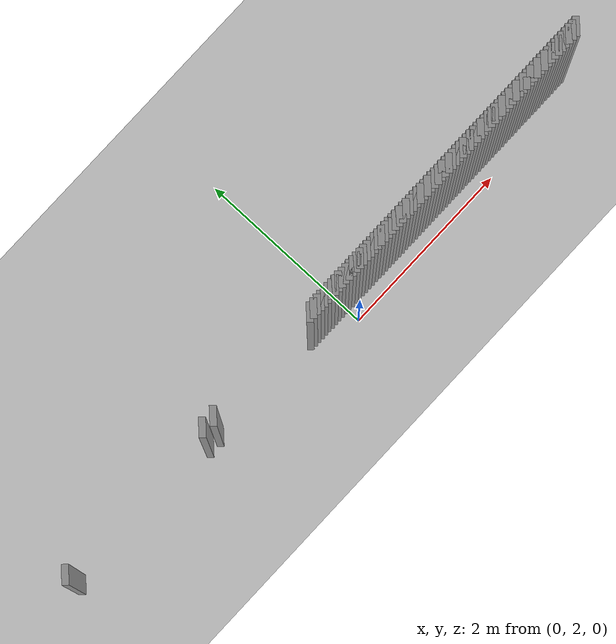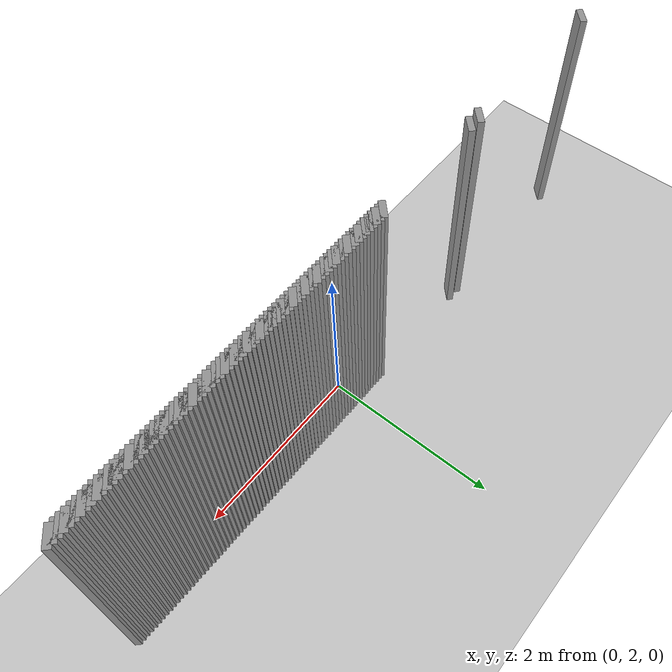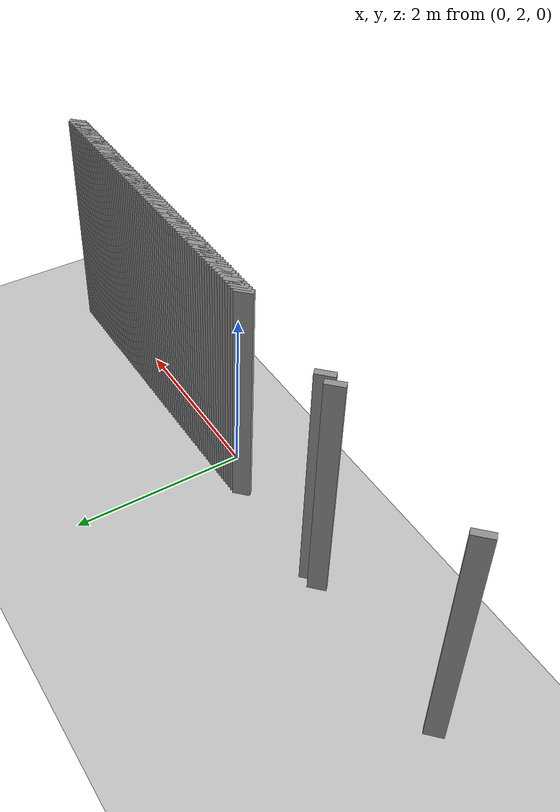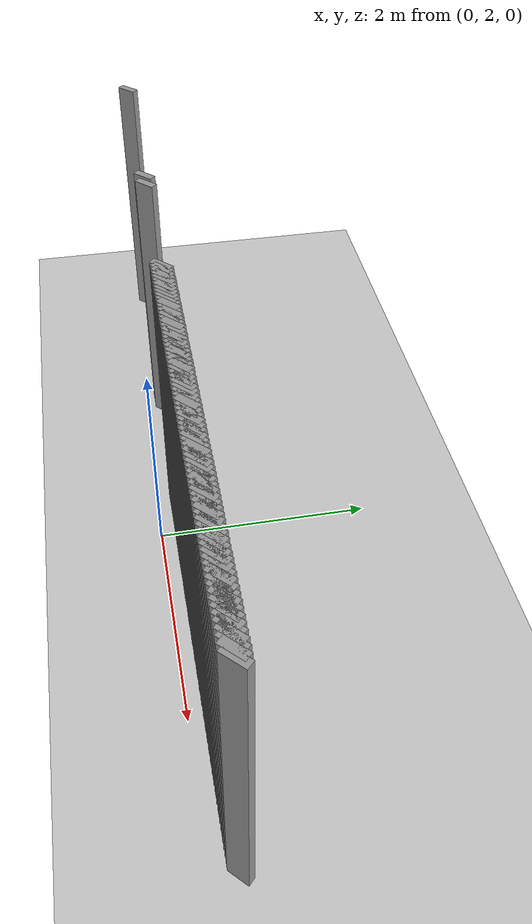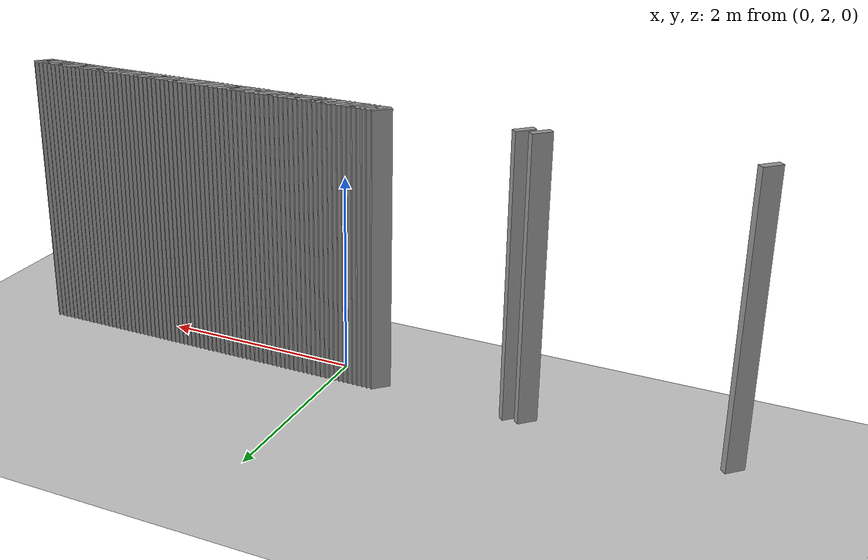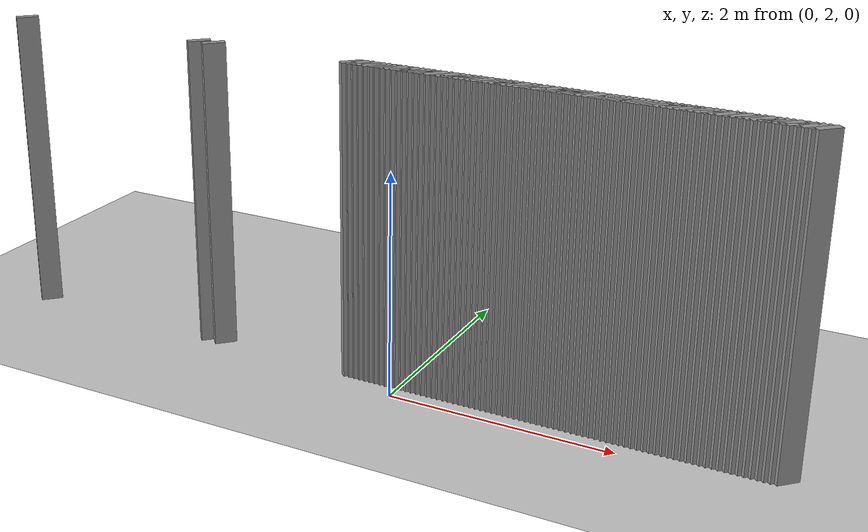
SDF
<sdf version="1.5">
 <world name="default">
  <include><uri>model://ground_plane</uri></include>
  <include><uri>model://sun</uri></include>
  <model name="grey_wall_551">
   <static>1</static>
   <link name="link">
    <pose>-3.875 2.225  1.4 0 0 -0.785398163397</pose>
    <collision name="collision"><geometry><box><size>0.0707106781187 .2  2.8</size></box></geometry></collision>
    <visual name="visual">
     <cast_shadows>0</cast_shadows>
     <geometry><box><size>0.0707106781187 .2  2.8</size></box></geometry>
     <material>
      <script>
       <uri>model://grey_wall/materials/scripts</uri>
       <uri>model://grey_wall/materials/textures</uri>
       <name>vrc/grey_wall</name>
      </script>
     </material>
    </visual>
   </link>
  </model>
  <model name="grey_wall_552">
   <static>1</static>
   <link name="link">
    <pose>-1.975 2.225  1.4 0 0 -0.785398163397</pose>
    <collision name="collision"><geometry><box><size>0.0707106781187 .2  2.8</size></box></geometry></collision>
    <visual name="visual">
     <cast_shadows>0</cast_shadows>
     <geometry><box><size>0.0707106781187 .2  2.8</size></box></geometry>
     <material>
      <script>
       <uri>model://grey_wall/materials/scripts</uri>
       <uri>model://grey_wall/materials/textures</uri>
       <name>vrc/grey_wall</name>
      </script>
     </material>
    </visual>
   </link>
  </model>
  <model name="grey_wall_553">
   <static>1</static>
   <link name="link">
    <pose>-1.825 2.225  1.4 0 0 -0.785398163397</pose>
    <collision name="collision"><geometry><box><size>0.0707106781187 .2  2.8</size></box></geometry></collision>
    <visual name="visual">
     <cast_shadows>0</cast_shadows>
     <geometry><box><size>0.0707106781187 .2  2.8</size></box></geometry>
     <material>
      <script>
       <uri>model://grey_wall/materials/scripts</uri>
       <uri>model://grey_wall/materials/textures</uri>
       <name>vrc/grey_wall</name>
      </script>
     </material>
    </visual>
   </link>
  </model>
  <model name="grey_wall_554">
   <static>1</static>
   <link name="link">
    <pose>-0.475 2.225  1.4 0 0 -0.785398163397</pose>
    <collision name="collision"><geometry><box><size>0.0707106781187 .2  2.8</size></box></geometry></collision>
    <visual name="visual">
     <cast_shadows>0</cast_shadows>
     <geometry><box><size>0.0707106781187 .2  2.8</size></box></geometry>
     <material>
      <script>
       <uri>model://grey_wall/materials/scripts</uri>
       <uri>model://grey_wall/materials/textures</uri>
       <name>vrc/grey_wall</name>
      </script>
     </material>
    </visual>
   </link>
  </model>
  <model name="grey_wall_555">
   <static>1</static>
   <link name="link">
    <pose>-0.425 2.225  1.4 0 0 -0.785398163397</pose>
    <collision name="collision"><geometry><box><size>0.0707106781187 .2  2.8</size></box></geometry></collision>
    <visual name="visual">
     <cast_shadows>0</cast_shadows>
     <geometry><box><size>0.0707106781187 .2  2.8</size></box></geometry>
     <material>
      <script>
       <uri>model://grey_wall/materials/scripts</uri>
       <uri>model://grey_wall/materials/textures</uri>
       <name>vrc/grey_wall</name>
      </script>
     </material>
    </visual>
   </link>
  </model>
  <model name="grey_wall_556">
   <static>1</static>
   <link name="link">
    <pose>-0.375 2.225  1.4 0 0 -0.785398163397</pose>
    <collision name="collision"><geometry><box><size>0.0707106781187 .2  2.8</size></box></geometry></collision>
    <visual name="visual">
     <cast_shadows>0</cast_shadows>
     <geometry><box><size>0.0707106781187 .2  2.8</size></box></geometry>
     <material>
      <script>
       <uri>model://grey_wall/materials/scripts</uri>
       <uri>model://grey_wall/materials/textures</uri>
       <name>vrc/grey_wall</name>
      </script>
     </material>
    </visual>
   </link>
  </model>
  <model name="grey_wall_557">
   <static>1</static>
   <link name="link">
    <pose>-0.325 2.225  1.4 0 0 -0.785398163397</pose>
    <collision name="collision"><geometry><box><size>0.0707106781187 .2  2.8</size></box></geometry></collision>
    <visual name="visual">
     <cast_shadows>0</cast_shadows>
     <geometry><box><size>0.0707106781187 .2  2.8</size></box></geometry>
     <material>
      <script>
       <uri>model://grey_wall/materials/scripts</uri>
       <uri>model://grey_wall/materials/textures</uri>
       <name>vrc/grey_wall</name>
      </script>
     </material>
    </visual>
   </link>
  </model>
  <model name="grey_wall_558">
   <static>1</static>
   <link name="link">
    <pose>-0.275 2.225  1.4 0 0 -0.785398163397</pose>
    <collision name="collision"><geometry><box><size>0.0707106781187 .2  2.8</size></box></geometry></collision>
    <visual name="visual">
     <cast_shadows>0</cast_shadows>
     <geometry><box><size>0.0707106781187 .2  2.8</size></box></geometry>
     <material>
      <script>
       <uri>model://grey_wall/materials/scripts</uri>
       <uri>model://grey_wall/materials/textures</uri>
       <name>vrc/grey_wall</name>
      </script>
     </material>
    </visual>
   </link>
  </model>
  <model name="grey_wall_559">
   <static>1</static>
   <link name="link">
    <pose>-0.225 2.225  1.4 0 0 -0.785398163397</pose>
    <collision name="collision"><geometry><box><size>0.0707106781187 .2  2.8</size></box></geometry></collision>
    <visual name="visual">
     <cast_shadows>0</cast_shadows>
     <geometry><box><size>0.0707106781187 .2  2.8</size></box></geometry>
     <material>
      <script>
       <uri>model://grey_wall/materials/scripts</uri>
       <uri>model://grey_wall/materials/textures</uri>
       <name>vrc/grey_wall</name>
      </script>
     </material>
    </visual>
   </link>
  </model>
  <model name="grey_wall_560">
   <static>1</static>
   <link name="link">
    <pose>-0.175 2.225  1.4 0 0 -0.785398163397</pose>
    <collision name="collision"><geometry><box><size>0.0707106781187 .2  2.8</size></box></geometry></collision>
    <visual name="visual">
     <cast_shadows>0</cast_shadows>
     <geometry><box><size>0.0707106781187 .2  2.8</size></box></geometry>
     <material>
      <script>
       <uri>model://grey_wall/materials/scripts</uri>
       <uri>model://grey_wall/materials/textures</uri>
       <name>vrc/grey_wall</name>
      </script>
     </material>
    </visual>
   </link>
  </model>
  <model name="grey_wall_561">
   <static>1</static>
   <link name="link">
    <pose>-0.125 2.225  1.4 0 0 -0.785398163397</pose>
    <collision name="collision"><geometry><box><size>0.0707106781187 .2  2.8</size></box></geometry></collision>
    <visual name="visual">
     <cast_shadows>0</cast_shadows>
     <geometry><box><size>0.0707106781187 .2  2.8</size></box></geometry>
     <material>
      <script>
       <uri>model://grey_wall/materials/scripts</uri>
       <uri>model://grey_wall/materials/textures</uri>
       <name>vrc/grey_wall</name>
      </script>
     </material>
    </visual>
   </link>
  </model>
  <model name="grey_wall_562">
   <static>1</static>
   <link name="link">
    <pose>-0.075 2.225  1.4 0 0 -0.785398163397</pose>
    <collision name="collision"><geometry><box><size>0.0707106781187 .2  2.8</size></box></geometry></collision>
    <visual name="visual">
     <cast_shadows>0</cast_shadows>
     <geometry><box><size>0.0707106781187 .2  2.8</size></box></geometry>
     <material>
      <script>
       <uri>model://grey_wall/materials/scripts</uri>
       <uri>model://grey_wall/materials/textures</uri>
       <name>vrc/grey_wall</name>
      </script>
     </material>
    </visual>
   </link>
  </model>
  <model name="grey_wall_563">
   <static>1</static>
   <link name="link">
    <pose>-0.025 2.225  1.4 0 0 -0.785398163397</pose>
    <collision name="collision"><geometry><box><size>0.0707106781187 .2  2.8</size></box></geometry></collision>
    <visual name="visual">
     <cast_shadows>0</cast_shadows>
     <geometry><box><size>0.0707106781187 .2  2.8</size></box></geometry>
     <material>
      <script>
       <uri>model://grey_wall/materials/scripts</uri>
       <uri>model://grey_wall/materials/textures</uri>
       <name>vrc/grey_wall</name>
      </script>
     </material>
    </visual>
   </link>
  </model>
  <model name="grey_wall_564">
   <static>1</static>
   <link name="link">
    <pose>0.025 2.225  1.4 0 0 -0.785398163397</pose>
    <collision name="collision"><geometry><box><size>0.0707106781187 .2  2.8</size></box></geometry></collision>
    <visual name="visual">
     <cast_shadows>0</cast_shadows>
     <geometry><box><size>0.0707106781187 .2  2.8</size></box></geometry>
     <material>
      <script>
       <uri>model://grey_wall/materials/scripts</uri>
       <uri>model://grey_wall/materials/textures</uri>
       <name>vrc/grey_wall</name>
      </script>
     </material>
    </visual>
   </link>
  </model>
  <model name="grey_wall_565">
   <static>1</static>
   <link name="link">
    <pose>0.075 2.225  1.4 0 0 -0.785398163397</pose>
    <collision name="collision"><geometry><box><size>0.0707106781187 .2  2.8</size></box></geometry></collision>
    <visual name="visual">
     <cast_shadows>0</cast_shadows>
     <geometry><box><size>0.0707106781187 .2  2.8</size></box></geometry>
     <material>
      <script>
       <uri>model://grey_wall/materials/scripts</uri>
       <uri>model://grey_wall/materials/textures</uri>
       <name>vrc/grey_wall</name>
      </script>
     </material>
    </visual>
   </link>
  </model>
  <model name="grey_wall_566">
   <static>1</static>
   <link name="link">
    <pose>0.125 2.225  1.4 0 0 -0.785398163397</pose>
    <collision name="collision"><geometry><box><size>0.0707106781187 .2  2.8</size></box></geometry></collision>
    <visual name="visual">
     <cast_shadows>0</cast_shadows>
     <geometry><box><size>0.0707106781187 .2  2.8</size></box></geometry>
     <material>
      <script>
       <uri>model://grey_wall/materials/scripts</uri>
       <uri>model://grey_wall/materials/textures</uri>
       <name>vrc/grey_wall</name>
      </script>
     </material>
    </visual>
   </link>
  </model>
  <model name="grey_wall_567">
   <static>1</static>
   <link name="link">
    <pose>0.175 2.225  1.4 0 0 -0.785398163397</pose>
    <collision name="collision"><geometry><box><size>0.0707106781187 .2  2.8</size></box></geometry></collision>
    <visual name="visual">
     <cast_shadows>0</cast_shadows>
     <geometry><box><size>0.0707106781187 .2  2.8</size></box></geometry>
     <material>
      <script>
       <uri>model://grey_wall/materials/scripts</uri>
       <uri>model://grey_wall/materials/textures</uri>
       <name>vrc/grey_wall</name>
      </script>
     </material>
    </visual>
   </link>
  </model>
  <model name="grey_wall_568">
   <static>1</static>
   <link name="link">
    <pose>0.225 2.225  1.4 0 0 -0.785398163397</pose>
    <collision name="collision"><geometry><box><size>0.0707106781187 .2  2.8</size></box></geometry></collision>
    <visual name="visual">
     <cast_shadows>0</cast_shadows>
     <geometry><box><size>0.0707106781187 .2  2.8</size></box></geometry>
     <material>
      <script>
       <uri>model://grey_wall/materials/scripts</uri>
       <uri>model://grey_wall/materials/textures</uri>
       <name>vrc/grey_wall</name>
      </script>
     </material>
    </visual>
   </link>
  </model>
  <model name="grey_wall_569">
   <static>1</static>
   <link name="link">
    <pose>0.275 2.225  1.4 0 0 -0.785398163397</pose>
    <collision name="collision"><geometry><box><size>0.0707106781187 .2  2.8</size></box></geometry></collision>
    <visual name="visual">
     <cast_shadows>0</cast_shadows>
     <geometry><box><size>0.0707106781187 .2  2.8</size></box></geometry>
     <material>
      <script>
       <uri>model://grey_wall/materials/scripts</uri>
       <uri>model://grey_wall/materials/textures</uri>
       <name>vrc/grey_wall</name>
      </script>
     </material>
    </visual>
   </link>
  </model>
  <model name="grey_wall_570">
   <static>1</static>
   <link name="link">
    <pose>0.325 2.225  1.4 0 0 -0.785398163397</pose>
    <collision name="collision"><geometry><box><size>0.0707106781187 .2  2.8</size></box></geometry></collision>
    <visual name="visual">
     <cast_shadows>0</cast_shadows>
     <geometry><box><size>0.0707106781187 .2  2.8</size></box></geometry>
     <material>
      <script>
       <uri>model://grey_wall/materials/scripts</uri>
       <uri>model://grey_wall/materials/textures</uri>
       <name>vrc/grey_wall</name>
      </script>
     </material>
    </visual>
   </link>
  </model>
  <model name="grey_wall_571">
   <static>1</static>
   <link name="link">
    <pose>0.375 2.225  1.4 0 0 -0.785398163397</pose>
    <collision name="collision"><geometry><box><size>0.0707106781187 .2  2.8</size></box></geometry></collision>
    <visual name="visual">
     <cast_shadows>0</cast_shadows>
     <geometry><box><size>0.0707106781187 .2  2.8</size></box></geometry>
     <material>
      <script>
       <uri>model://grey_wall/materials/scripts</uri>
       <uri>model://grey_wall/materials/textures</uri>
       <name>vrc/grey_wall</name>
      </script>
     </material>
    </visual>
   </link>
  </model>
  <model name="grey_wall_572">
   <static>1</static>
   <link name="link">
    <pose>0.425 2.225  1.4 0 0 -0.785398163397</pose>
    <collision name="collision"><geometry><box><size>0.0707106781187 .2  2.8</size></box></geometry></collision>
    <visual name="visual">
     <cast_shadows>0</cast_shadows>
     <geometry><box><size>0.0707106781187 .2  2.8</size></box></geometry>
     <material>
      <script>
       <uri>model://grey_wall/materials/scripts</uri>
       <uri>model://grey_wall/materials/textures</uri>
       <name>vrc/grey_wall</name>
      </script>
     </material>
    </visual>
   </link>
  </model>
  <model name="grey_wall_573">
   <static>1</static>
   <link name="link">
    <pose>0.475 2.225  1.4 0 0 -0.785398163397</pose>
    <collision name="collision"><geometry><box><size>0.0707106781187 .2  2.8</size></box></geometry></collision>
    <visual name="visual">
     <cast_shadows>0</cast_shadows>
     <geometry><box><size>0.0707106781187 .2  2.8</size></box></geometry>
     <material>
      <script>
       <uri>model://grey_wall/materials/scripts</uri>
       <uri>model://grey_wall/materials/textures</uri>
       <name>vrc/grey_wall</name>
      </script>
     </material>
    </visual>
   </link>
  </model>
  <model name="grey_wall_574">
   <static>1</static>
   <link name="link">
    <pose>0.525 2.225  1.4 0 0 -0.785398163397</pose>
    <collision name="collision"><geometry><box><size>0.0707106781187 .2  2.8</size></box></geometry></collision>
    <visual name="visual">
     <cast_shadows>0</cast_shadows>
     <geometry><box><size>0.0707106781187 .2  2.8</size></box></geometry>
     <material>
      <script>
       <uri>model://grey_wall/materials/scripts</uri>
       <uri>model://grey_wall/materials/textures</uri>
       <name>vrc/grey_wall</name>
      </script>
     </material>
    </visual>
   </link>
  </model>
  <model name="grey_wall_575">
   <static>1</static>
   <link name="link">
    <pose>0.575 2.225  1.4 0 0 -0.785398163397</pose>
    <collision name="collision"><geometry><box><size>0.0707106781187 .2  2.8</size></box></geometry></collision>
    <visual name="visual">
     <cast_shadows>0</cast_shadows>
     <geometry><box><size>0.0707106781187 .2  2.8</size></box></geometry>
     <material>
      <script>
       <uri>model://grey_wall/materials/scripts</uri>
       <uri>model://grey_wall/materials/textures</uri>
       <name>vrc/grey_wall</name>
      </script>
     </material>
    </visual>
   </link>
  </model>
  <model name="grey_wall_576">
   <static>1</static>
   <link name="link">
    <pose>0.625 2.225  1.4 0 0 -0.785398163397</pose>
    <collision name="collision"><geometry><box><size>0.0707106781187 .2  2.8</size></box></geometry></collision>
    <visual name="visual">
     <cast_shadows>0</cast_shadows>
     <geometry><box><size>0.0707106781187 .2  2.8</size></box></geometry>
     <material>
      <script>
       <uri>model://grey_wall/materials/scripts</uri>
       <uri>model://grey_wall/materials/textures</uri>
       <name>vrc/grey_wall</name>
      </script>
     </material>
    </visual>
   </link>
  </model>
  <model name="grey_wall_577">
   <static>1</static>
   <link name="link">
    <pose>0.675 2.225  1.4 0 0 -0.785398163397</pose>
    <collision name="collision"><geometry><box><size>0.0707106781187 .2  2.8</size></box></geometry></collision>
    <visual name="visual">
     <cast_shadows>0</cast_shadows>
     <geometry><box><size>0.0707106781187 .2  2.8</size></box></geometry>
     <material>
      <script>
       <uri>model://grey_wall/materials/scripts</uri>
       <uri>model://grey_wall/materials/textures</uri>
       <name>vrc/grey_wall</name>
      </script>
     </material>
    </visual>
   </link>
  </model>
  <model name="grey_wall_578">
   <static>1</static>
   <link name="link">
    <pose>0.725 2.225  1.4 0 0 -0.785398163397</pose>
    <collision name="collision"><geometry><box><size>0.0707106781187 .2  2.8</size></box></geometry></collision>
    <visual name="visual">
     <cast_shadows>0</cast_shadows>
     <geometry><box><size>0.0707106781187 .2  2.8</size></box></geometry>
     <material>
      <script>
       <uri>model://grey_wall/materials/scripts</uri>
       <uri>model://grey_wall/materials/textures</uri>
       <name>vrc/grey_wall</name>
      </script>
     </material>
    </visual>
   </link>
  </model>
  <model name="grey_wall_579">
   <static>1</static>
   <link name="link">
    <pose>0.775 2.225  1.4 0 0 -0.785398163397</pose>
    <collision name="collision"><geometry><box><size>0.0707106781187 .2  2.8</size></box></geometry></collision>
    <visual name="visual">
     <cast_shadows>0</cast_shadows>
     <geometry><box><size>0.0707106781187 .2  2.8</size></box></geometry>
     <material>
      <script>
       <uri>model://grey_wall/materials/scripts</uri>
       <uri>model://grey_wall/materials/textures</uri>
       <name>vrc/grey_wall</name>
      </script>
     </material>
    </visual>
   </link>
  </model>
  <model name="grey_wall_580">
   <static>1</static>
   <link name="link">
    <pose>0.825 2.225  1.4 0 0 -0.785398163397</pose>
    <collision name="collision"><geometry><box><size>0.0707106781187 .2  2.8</size></box></geometry></collision>
    <visual name="visual">
     <cast_shadows>0</cast_shadows>
     <geometry><box><size>0.0707106781187 .2  2.8</size></box></geometry>
     <material>
      <script>
       <uri>model://grey_wall/materials/scripts</uri>
       <uri>model://grey_wall/materials/textures</uri>
       <name>vrc/grey_wall</name>
      </script>
     </material>
    </visual>
   </link>
  </model>
  <model name="grey_wall_581">
   <static>1</static>
   <link name="link">
    <pose>0.875 2.225  1.4 0 0 -0.785398163397</pose>
    <collision name="collision"><geometry><box><size>0.0707106781187 .2  2.8</size></box></geometry></collision>
    <visual name="visual">
     <cast_shadows>0</cast_shadows>
     <geometry><box><size>0.0707106781187 .2  2.8</size></box></geometry>
     <material>
      <script>
       <uri>model://grey_wall/materials/scripts</uri>
       <uri>model://grey_wall/materials/textures</uri>
       <name>vrc/grey_wall</name>
      </script>
     </material>
    </visual>
   </link>
  </model>
  <model name="grey_wall_582">
   <static>1</static>
   <link name="link">
    <pose>0.925 2.225  1.4 0 0 -0.785398163397</pose>
    <collision name="collision"><geometry><box><size>0.0707106781187 .2  2.8</size></box></geometry></collision>
    <visual name="visual">
     <cast_shadows>0</cast_shadows>
     <geometry><box><size>0.0707106781187 .2  2.8</size></box></geometry>
     <material>
      <script>
       <uri>model://grey_wall/materials/scripts</uri>
       <uri>model://grey_wall/materials/textures</uri>
       <name>vrc/grey_wall</name>
      </script>
     </material>
    </visual>
   </link>
  </model>
  <model name="grey_wall_583">
   <static>1</static>
   <link name="link">
    <pose>0.975 2.225  1.4 0 0 -0.785398163397</pose>
    <collision name="collision"><geometry><box><size>0.0707106781187 .2  2.8</size></box></geometry></collision>
    <visual name="visual">
     <cast_shadows>0</cast_shadows>
     <geometry><box><size>0.0707106781187 .2  2.8</size></box></geometry>
     <material>
      <script>
       <uri>model://grey_wall/materials/scripts</uri>
       <uri>model://grey_wall/materials/textures</uri>
       <name>vrc/grey_wall</name>
      </script>
     </material>
    </visual>
   </link>
  </model>
  <model name="grey_wall_584">
   <static>1</static>
   <link name="link">
    <pose>1.025 2.225  1.4 0 0 -0.785398163397</pose>
    <collision name="collision"><geometry><box><size>0.0707106781187 .2  2.8</size></box></geometry></collision>
    <visual name="visual">
     <cast_shadows>0</cast_shadows>
     <geometry><box><size>0.0707106781187 .2  2.8</size></box></geometry>
     <material>
      <script>
       <uri>model://grey_wall/materials/scripts</uri>
       <uri>model://grey_wall/materials/textures</uri>
       <name>vrc/grey_wall</name>
      </script>
     </material>
    </visual>
   </link>
  </model>
  <model name="grey_wall_585">
   <static>1</static>
   <link name="link">
    <pose>1.075 2.225  1.4 0 0 -0.785398163397</pose>
    <collision name="collision"><geometry><box><size>0.0707106781187 .2  2.8</size></box></geometry></collision>
    <visual name="visual">
     <cast_shadows>0</cast_shadows>
     <geometry><box><size>0.0707106781187 .2  2.8</size></box></geometry>
     <material>
      <script>
       <uri>model://grey_wall/materials/scripts</uri>
       <uri>model://grey_wall/materials/textures</uri>
       <name>vrc/grey_wall</name>
      </script>
     </material>
    </visual>
   </link>
  </model>
  <model name="grey_wall_586">
   <static>1</static>
   <link name="link">
    <pose>1.125 2.225  1.4 0 0 -0.785398163397</pose>
    <collision name="collision"><geometry><box><size>0.0707106781187 .2  2.8</size></box></geometry></collision>
    <visual name="visual">
     <cast_shadows>0</cast_shadows>
     <geometry><box><size>0.0707106781187 .2  2.8</size></box></geometry>
     <material>
      <script>
       <uri>model://grey_wall/materials/scripts</uri>
       <uri>model://grey_wall/materials/textures</uri>
       <name>vrc/grey_wall</name>
      </script>
     </material>
    </visual>
   </link>
  </model>
  <model name="grey_wall_587">
   <static>1</static>
   <link name="link">
    <pose>1.175 2.225  1.4 0 0 -0.785398163397</pose>
    <collision name="collision"><geometry><box><size>0.0707106781187 .2  2.8</size></box></geometry></collision>
    <visual name="visual">
     <cast_shadows>0</cast_shadows>
     <geometry><box><size>0.0707106781187 .2  2.8</size></box></geometry>
     <material>
      <script>
       <uri>model://grey_wall/materials/scripts</uri>
       <uri>model://grey_wall/materials/textures</uri>
       <name>vrc/grey_wall</name>
      </script>
     </material>
    </visual>
   </link>
  </model>
  <model name="grey_wall_588">
   <static>1</static>
   <link name="link">
    <pose>1.225 2.225  1.4 0 0 -0.785398163397</pose>
    <collision name="collision"><geometry><box><size>0.0707106781187 .2  2.8</size></box></geometry></collision>
    <visual name="visual">
     <cast_shadows>0</cast_shadows>
     <geometry><box><size>0.0707106781187 .2  2.8</size></box></geometry>
     <material>
      <script>
       <uri>model://grey_wall/materials/scripts</uri>
       <uri>model://grey_wall/materials/textures</uri>
       <name>vrc/grey_wall</name>
      </script>
     </material>
    </visual>
   </link>
  </model>
  <model name="grey_wall_589">
   <static>1</static>
   <link name="link">
    <pose>1.275 2.225  1.4 0 0 -0.785398163397</pose>
    <collision name="collision"><geometry><box><size>0.0707106781187 .2  2.8</size></box></geometry></collision>
    <visual name="visual">
     <cast_shadows>0</cast_shadows>
     <geometry><box><size>0.0707106781187 .2  2.8</size></box></geometry>
     <material>
      <script>
       <uri>model://grey_wall/materials/scripts</uri>
       <uri>model://grey_wall/materials/textures</uri>
       <name>vrc/grey_wall</name>
      </script>
     </material>
    </visual>
   </link>
  </model>
  <model name="grey_wall_590">
   <static>1</static>
   <link name="link">
    <pose>1.325 2.225  1.4 0 0 -0.785398163397</pose>
    <collision name="collision"><geometry><box><size>0.0707106781187 .2  2.8</size></box></geometry></collision>
    <visual name="visual">
     <cast_shadows>0</cast_shadows>
     <geometry><box><size>0.0707106781187 .2  2.8</size></box></geometry>
     <material>
      <script>
       <uri>model://grey_wall/materials/scripts</uri>
       <uri>model://grey_wall/materials/textures</uri>
       <name>vrc/grey_wall</name>
      </script>
     </material>
    </visual>
   </link>
  </model>
  <model name="grey_wall_591">
   <static>1</static>
   <link name="link">
    <pose>1.375 2.225  1.4 0 0 -0.785398163397</pose>
    <collision name="collision"><geometry><box><size>0.0707106781187 .2  2.8</size></box></geometry></collision>
    <visual name="visual">
     <cast_shadows>0</cast_shadows>
     <geometry><box><size>0.0707106781187 .2  2.8</size></box></geometry>
     <material>
      <script>
       <uri>model://grey_wall/materials/scripts</uri>
       <uri>model://grey_wall/materials/textures</uri>
       <name>vrc/grey_wall</name>
      </script>
     </material>
    </visual>
   </link>
  </model>
  <model name="grey_wall_592">
   <static>1</static>
   <link name="link">
    <pose>1.425 2.225  1.4 0 0 -0.785398163397</pose>
    <collision name="collision"><geometry><box><size>0.0707106781187 .2  2.8</size></box></geometry></collision>
    <visual name="visual">
     <cast_shadows>0</cast_shadows>
     <geometry><box><size>0.0707106781187 .2  2.8</size></box></geometry>
     <material>
      <script>
       <uri>model://grey_wall/materials/scripts</uri>
       <uri>model://grey_wall/materials/textures</uri>
       <name>vrc/grey_wall</name>
      </script>
     </material>
    </visual>
   </link>
  </model>
  <model name="grey_wall_593">
   <static>1</static>
   <link name="link">
    <pose>1.475 2.225  1.4 0 0 -0.785398163397</pose>
    <collision name="collision"><geometry><box><size>0.0707106781187 .2  2.8</size></box></geometry></collision>
    <visual name="visual">
     <cast_shadows>0</cast_shadows>
     <geometry><box><size>0.0707106781187 .2  2.8</size></box></geometry>
     <material>
      <script>
       <uri>model://grey_wall/materials/scripts</uri>
       <uri>model://grey_wall/materials/textures</uri>
       <name>vrc/grey_wall</name>
      </script>
     </material>
    </visual>
   </link>
  </model>
  <model name="grey_wall_594">
   <static>1</static>
   <link name="link">
    <pose>1.525 2.225  1.4 0 0 -0.785398163397</pose>
    <collision name="collision"><geometry><box><size>0.0707106781187 .2  2.8</size></box></geometry></collision>
    <visual name="visual">
     <cast_shadows>0</cast_shadows>
     <geometry><box><size>0.0707106781187 .2  2.8</size></box></geometry>
     <material>
      <script>
       <uri>model://grey_wall/materials/scripts</uri>
       <uri>model://grey_wall/materials/textures</uri>
       <name>vrc/grey_wall</name>
      </script>
     </material>
    </visual>
   </link>
  </model>
  <model name="grey_wall_595">
   <static>1</static>
   <link name="link">
    <pose>1.575 2.225  1.4 0 0 -0.785398163397</pose>
    <collision name="collision"><geometry><box><size>0.0707106781187 .2  2.8</size></box></geometry></collision>
    <visual name="visual">
     <cast_shadows>0</cast_shadows>
     <geometry><box><size>0.0707106781187 .2  2.8</size></box></geometry>
     <material>
      <script>
       <uri>model://grey_wall/materials/scripts</uri>
       <uri>model://grey_wall/materials/textures</uri>
       <name>vrc/grey_wall</name>
      </script>
     </material>
    </visual>
   </link>
  </model>
  <model name="grey_wall_596">
   <static>1</static>
   <link name="link">
    <pose>1.625 2.225  1.4 0 0 -0.785398163397</pose>
    <collision name="collision"><geometry><box><size>0.0707106781187 .2  2.8</size></box></geometry></collision>
    <visual name="visual">
     <cast_shadows>0</cast_shadows>
     <geometry><box><size>0.0707106781187 .2  2.8</size></box></geometry>
     <material>
      <script>
       <uri>model://grey_wall/materials/scripts</uri>
       <uri>model://grey_wall/materials/textures</uri>
       <name>vrc/grey_wall</name>
      </script>
     </material>
    </visual>
   </link>
  </model>
  <model name="grey_wall_597">
   <static>1</static>
   <link name="link">
    <pose>1.675 2.225  1.4 0 0 -0.785398163397</pose>
    <collision name="collision"><geometry><box><size>0.0707106781187 .2  2.8</size></box></geometry></collision>
    <visual name="visual">
     <cast_shadows>0</cast_shadows>
     <geometry><box><size>0.0707106781187 .2  2.8</size></box></geometry>
     <material>
      <script>
       <uri>model://grey_wall/materials/scripts</uri>
       <uri>model://grey_wall/materials/textures</uri>
       <name>vrc/grey_wall</name>
      </script>
     </material>
    </visual>
   </link>
  </model>
  <model name="grey_wall_598">
   <static>1</static>
   <link name="link">
    <pose>1.725 2.225  1.4 0 0 -0.785398163397</pose>
    <collision name="collision"><geometry><box><size>0.0707106781187 .2  2.8</size></box></geometry></collision>
    <visual name="visual">
     <cast_shadows>0</cast_shadows>
     <geometry><box><size>0.0707106781187 .2  2.8</size></box></geometry>
     <material>
      <script>
       <uri>model://grey_wall/materials/scripts</uri>
       <uri>model://grey_wall/materials/textures</uri>
       <name>vrc/grey_wall</name>
      </script>
     </material>
    </visual>
   </link>
  </model>
  <model name="grey_wall_599">
   <static>1</static>
   <link name="link">
    <pose>1.775 2.225  1.4 0 0 -0.785398163397</pose>
    <collision name="collision"><geometry><box><size>0.0707106781187 .2  2.8</size></box></geometry></collision>
    <visual name="visual">
     <cast_shadows>0</cast_shadows>
     <geometry><box><size>0.0707106781187 .2  2.8</size></box></geometry>
     <material>
      <script>
       <uri>model://grey_wall/materials/scripts</uri>
       <uri>model://grey_wall/materials/textures</uri>
       <name>vrc/grey_wall</name>
      </script>
     </material>
    </visual>
   </link>
  </model>
  <model name="grey_wall_600">
   <static>1</static>
   <link name="link">
    <pose>1.825 2.225  1.4 0 0 -0.785398163397</pose>
    <collision name="collision"><geometry><box><size>0.0707106781187 .2  2.8</size></box></geometry></collision>
    <visual name="visual">
     <cast_shadows>0</cast_shadows>
     <geometry><box><size>0.0707106781187 .2  2.8</size></box></geometry>
     <material>
      <script>
       <uri>model://grey_wall/materials/scripts</uri>
       <uri>model://grey_wall/materials/textures</uri>
       <name>vrc/grey_wall</name>
      </script>
     </material>
    </visual>
   </link>
  </model>
  <model name="grey_wall_601">
   <static>1</static>
   <link name="link">
    <pose>1.875 2.225  1.4 0 0 -0.785398163397</pose>
    <collision name="collision"><geometry><box><size>0.0707106781187 .2  2.8</size></box></geometry></collision>
    <visual name="visual">
     <cast_shadows>0</cast_shadows>
     <geometry><box><size>0.0707106781187 .2  2.8</size></box></geometry>
     <material>
      <script>
       <uri>model://grey_wall/materials/scripts</uri>
       <uri>model://grey_wall/materials/textures</uri>
       <name>vrc/grey_wall</name>
      </script>
     </material>
    </visual>
   </link>
  </model>
  <model name="grey_wall_602">
   <static>1</static>
   <link name="link">
    <pose>1.925 2.225  1.4 0 0 -0.785398163397</pose>
    <collision name="collision"><geometry><box><size>0.0707106781187 .2  2.8</size></box></geometry></collision>
    <visual name="visual">
     <cast_shadows>0</cast_shadows>
     <geometry><box><size>0.0707106781187 .2  2.8</size></box></geometry>
     <material>
      <script>
       <uri>model://grey_wall/materials/scripts</uri>
       <uri>model://grey_wall/materials/textures</uri>
       <name>vrc/grey_wall</name>
      </script>
     </material>
    </visual>
   </link>
  </model>
  <model name="grey_wall_603">
   <static>1</static>
   <link name="link">
    <pose>1.975 2.225  1.4 0 0 -0.785398163397</pose>
    <collision name="collision"><geometry><box><size>0.0707106781187 .2  2.8</size></box></geometry></collision>
    <visual name="visual">
     <cast_shadows>0</cast_shadows>
     <geometry><box><size>0.0707106781187 .2  2.8</size></box></geometry>
     <material>
      <script>
       <uri>model://grey_wall/materials/scripts</uri>
       <uri>model://grey_wall/materials/textures</uri>
       <name>vrc/grey_wall</name>
      </script>
     </material>
    </visual>
   </link>
  </model>
  <model name="grey_wall_604">
   <static>1</static>
   <link name="link">
    <pose>2.025 2.225  1.4 0 0 -0.785398163397</pose>
    <collision name="collision"><geometry><box><size>0.0707106781187 .2  2.8</size></box></geometry></collision>
    <visual name="visual">
     <cast_shadows>0</cast_shadows>
     <geometry><box><size>0.0707106781187 .2  2.8</size></box></geometry>
     <material>
      <script>
       <uri>model://grey_wall/materials/scripts</uri>
       <uri>model://grey_wall/materials/textures</uri>
       <name>vrc/grey_wall</name>
      </script>
     </material>
    </visual>
   </link>
  </model>
  <model name="grey_wall_605">
   <static>1</static>
   <link name="link">
    <pose>2.075 2.225  1.4 0 0 -0.785398163397</pose>
    <collision name="collision"><geometry><box><size>0.0707106781187 .2  2.8</size></box></geometry></collision>
    <visual name="visual">
     <cast_shadows>0</cast_shadows>
     <geometry><box><size>0.0707106781187 .2  2.8</size></box></geometry>
     <material>
      <script>
       <uri>model://grey_wall/materials/scripts</uri>
       <uri>model://grey_wall/materials/textures</uri>
       <name>vrc/grey_wall</name>
      </script>
     </material>
    </visual>
   </link>
  </model>
  <model name="grey_wall_606">
   <static>1</static>
   <link name="link">
    <pose>2.125 2.225  1.4 0 0 -0.785398163397</pose>
    <collision name="collision"><geometry><box><size>0.0707106781187 .2  2.8</size></box></geometry></collision>
    <visual name="visual">
     <cast_shadows>0</cast_shadows>
     <geometry><box><size>0.0707106781187 .2  2.8</size></box></geometry>
     <material>
      <script>
       <uri>model://grey_wall/materials/scripts</uri>
       <uri>model://grey_wall/materials/textures</uri>
       <name>vrc/grey_wall</name>
      </script>
     </material>
    </visual>
   </link>
  </model>
  <model name="grey_wall_607">
   <static>1</static>
   <link name="link">
    <pose>2.175 2.225  1.4 0 0 -0.785398163397</pose>
    <collision name="collision"><geometry><box><size>0.0707106781187 .2  2.8</size></box></geometry></collision>
    <visual name="visual">
     <cast_shadows>0</cast_shadows>
     <geometry><box><size>0.0707106781187 .2  2.8</size></box></geometry>
     <material>
      <script>
       <uri>model://grey_wall/materials/scripts</uri>
       <uri>model://grey_wall/materials/textures</uri>
       <name>vrc/grey_wall</name>
      </script>
     </material>
    </visual>
   </link>
  </model>
  <model name="grey_wall_608">
   <static>1</static>
   <link name="link">
    <pose>2.225 2.225  1.4 0 0 -0.785398163397</pose>
    <collision name="collision"><geometry><box><size>0.0707106781187 .2  2.8</size></box></geometry></collision>
    <visual name="visual">
     <cast_shadows>0</cast_shadows>
     <geometry><box><size>0.0707106781187 .2  2.8</size></box></geometry>
     <material>
      <script>
       <uri>model://grey_wall/materials/scripts</uri>
       <uri>model://grey_wall/materials/textures</uri>
       <name>vrc/grey_wall</name>
      </script>
     </material>
    </visual>
   </link>
  </model>
  <model name="grey_wall_609">
   <static>1</static>
   <link name="link">
    <pose>2.275 2.225  1.4 0 0 -0.785398163397</pose>
    <collision name="collision"><geometry><box><size>0.0707106781187 .2  2.8</size></box></geometry></collision>
    <visual name="visual">
     <cast_shadows>0</cast_shadows>
     <geometry><box><size>0.0707106781187 .2  2.8</size></box></geometry>
     <material>
      <script>
       <uri>model://grey_wall/materials/scripts</uri>
       <uri>model://grey_wall/materials/textures</uri>
       <name>vrc/grey_wall</name>
      </script>
     </material>
    </visual>
   </link>
  </model>
  <model name="grey_wall_610">
   <static>1</static>
   <link name="link">
    <pose>2.325 2.225  1.4 0 0 -0.785398163397</pose>
    <collision name="collision"><geometry><box><size>0.0707106781187 .2  2.8</size></box></geometry></collision>
    <visual name="visual">
     <cast_shadows>0</cast_shadows>
     <geometry><box><size>0.0707106781187 .2  2.8</size></box></geometry>
     <material>
      <script>
       <uri>model://grey_wall/materials/scripts</uri>
       <uri>model://grey_wall/materials/textures</uri>
       <name>vrc/grey_wall</name>
      </script>
     </material>
    </visual>
   </link>
  </model>
  <model name="grey_wall_611">
   <static>1</static>
   <link name="link">
    <pose>2.375 2.225  1.4 0 0 -0.785398163397</pose>
    <collision name="collision"><geometry><box><size>0.0707106781187 .2  2.8</size></box></geometry></collision>
    <visual name="visual">
     <cast_shadows>0</cast_shadows>
     <geometry><box><size>0.0707106781187 .2  2.8</size></box></geometry>
     <material>
      <script>
       <uri>model://grey_wall/materials/scripts</uri>
       <uri>model://grey_wall/materials/textures</uri>
       <name>vrc/grey_wall</name>
      </script>
     </material>
    </visual>
   </link>
  </model>
  <model name="grey_wall_612">
   <static>1</static>
   <link name="link">
    <pose>2.425 2.225  1.4 0 0 -0.785398163397</pose>
    <collision name="collision"><geometry><box><size>0.0707106781187 .2  2.8</size></box></geometry></collision>
    <visual name="visual">
     <cast_shadows>0</cast_shadows>
     <geometry><box><size>0.0707106781187 .2  2.8</size></box></geometry>
     <material>
      <script>
       <uri>model://grey_wall/materials/scripts</uri>
       <uri>model://grey_wall/materials/textures</uri>
       <name>vrc/grey_wall</name>
      </script>
     </material>
    </visual>
   </link>
  </model>
  <model name="grey_wall_613">
   <static>1</static>
   <link name="link">
    <pose>2.475 2.225  1.4 0 0 -0.785398163397</pose>
    <collision name="collision"><geometry><box><size>0.0707106781187 .2  2.8</size></box></geometry></collision>
    <visual name="visual">
     <cast_shadows>0</cast_shadows>
     <geometry><box><size>0.0707106781187 .2  2.8</size></box></geometry>
     <material>
      <script>
       <uri>model://grey_wall/materials/scripts</uri>
       <uri>model://grey_wall/materials/textures</uri>
       <name>vrc/grey_wall</name>
      </script>
     </material>
    </visual>
   </link>
  </model>
  <model name="grey_wall_614">
   <static>1</static>
   <link name="link">
    <pose>2.525 2.225  1.4 0 0 -0.785398163397</pose>
    <collision name="collision"><geometry><box><size>0.0707106781187 .2  2.8</size></box></geometry></collision>
    <visual name="visual">
     <cast_shadows>0</cast_shadows>
     <geometry><box><size>0.0707106781187 .2  2.8</size></box></geometry>
     <material>
      <script>
       <uri>model://grey_wall/materials/scripts</uri>
       <uri>model://grey_wall/materials/textures</uri>
       <name>vrc/grey_wall</name>
      </script>
     </material>
    </visual>
   </link>
  </model>
  <model name="grey_wall_615">
   <static>1</static>
   <link name="link">
    <pose>2.575 2.225  1.4 0 0 -0.785398163397</pose>
    <collision name="collision"><geometry><box><size>0.0707106781187 .2  2.8</size></box></geometry></collision>
    <visual name="visual">
     <cast_shadows>0</cast_shadows>
     <geometry><box><size>0.0707106781187 .2  2.8</size></box></geometry>
     <material>
      <script>
       <uri>model://grey_wall/materials/scripts</uri>
       <uri>model://grey_wall/materials/textures</uri>
       <name>vrc/grey_wall</name>
      </script>
     </material>
    </visual>
   </link>
  </model>
  <model name="grey_wall_616">
   <static>1</static>
   <link name="link">
    <pose>2.625 2.225  1.4 0 0 -0.785398163397</pose>
    <collision name="collision"><geometry><box><size>0.0707106781187 .2  2.8</size></box></geometry></collision>
    <visual name="visual">
     <cast_shadows>0</cast_shadows>
     <geometry><box><size>0.0707106781187 .2  2.8</size></box></geometry>
     <material>
      <script>
       <uri>model://grey_wall/materials/scripts</uri>
       <uri>model://grey_wall/materials/textures</uri>
       <name>vrc/grey_wall</name>
      </script>
     </material>
    </visual>
   </link>
  </model>
  <model name="grey_wall_617">
   <static>1</static>
   <link name="link">
    <pose>2.675 2.225  1.4 0 0 -0.785398163397</pose>
    <collision name="collision"><geometry><box><size>0.0707106781187 .2  2.8</size></box></geometry></collision>
    <visual name="visual">
     <cast_shadows>0</cast_shadows>
     <geometry><box><size>0.0707106781187 .2  2.8</size></box></geometry>
     <material>
      <script>
       <uri>model://grey_wall/materials/scripts</uri>
       <uri>model://grey_wall/materials/textures</uri>
       <name>vrc/grey_wall</name>
      </script>
     </material>
    </visual>
   </link>
  </model>
  <model name="grey_wall_618">
   <static>1</static>
   <link name="link">
    <pose>2.725 2.225  1.4 0 0 -0.785398163397</pose>
    <collision name="collision"><geometry><box><size>0.0707106781187 .2  2.8</size></box></geometry></collision>
    <visual name="visual">
     <cast_shadows>0</cast_shadows>
     <geometry><box><size>0.0707106781187 .2  2.8</size></box></geometry>
     <material>
      <script>
       <uri>model://grey_wall/materials/scripts</uri>
       <uri>model://grey_wall/materials/textures</uri>
       <name>vrc/grey_wall</name>
      </script>
     </material>
    </visual>
   </link>
  </model>
  <model name="grey_wall_619">
   <static>1</static>
   <link name="link">
    <pose>2.775 2.225  1.4 0 0 -0.785398163397</pose>
    <collision name="collision"><geometry><box><size>0.0707106781187 .2  2.8</size></box></geometry></collision>
    <visual name="visual">
     <cast_shadows>0</cast_shadows>
     <geometry><box><size>0.0707106781187 .2  2.8</size></box></geometry>
     <material>
      <script>
       <uri>model://grey_wall/materials/scripts</uri>
       <uri>model://grey_wall/materials/textures</uri>
       <name>vrc/grey_wall</name>
      </script>
     </material>
    </visual>
   </link>
  </model>
  <model name="grey_wall_620">
   <static>1</static>
   <link name="link">
    <pose>2.825 2.225  1.4 0 0 -0.785398163397</pose>
    <collision name="collision"><geometry><box><size>0.0707106781187 .2  2.8</size></box></geometry></collision>
    <visual name="visual">
     <cast_shadows>0</cast_shadows>
     <geometry><box><size>0.0707106781187 .2  2.8</size></box></geometry>
     <material>
      <script>
       <uri>model://grey_wall/materials/scripts</uri>
       <uri>model://grey_wall/materials/textures</uri>
       <name>vrc/grey_wall</name>
      </script>
     </material>
    </visual>
   </link>
  </model>
  <model name="grey_wall_621">
   <static>1</static>
   <link name="link">
    <pose>2.875 2.225  1.4 0 0 -0.785398163397</pose>
    <collision name="collision"><geometry><box><size>0.0707106781187 .2  2.8</size></box></geometry></collision>
    <visual name="visual">
     <cast_shadows>0</cast_shadows>
     <geometry><box><size>0.0707106781187 .2  2.8</size></box></geometry>
     <material>
      <script>
       <uri>model://grey_wall/materials/scripts</uri>
       <uri>model://grey_wall/materials/textures</uri>
       <name>vrc/grey_wall</name>
      </script>
     </material>
    </visual>
   </link>
  </model>
  <model name="grey_wall_622">
   <static>1</static>
   <link name="link">
    <pose>2.925 2.225  1.4 0 0 -0.785398163397</pose>
    <collision name="collision"><geometry><box><size>0.0707106781187 .2  2.8</size></box></geometry></collision>
    <visual name="visual">
     <cast_shadows>0</cast_shadows>
     <geometry><box><size>0.0707106781187 .2  2.8</size></box></geometry>
     <material>
      <script>
       <uri>model://grey_wall/materials/scripts</uri>
       <uri>model://grey_wall/materials/textures</uri>
       <name>vrc/grey_wall</name>
      </script>
     </material>
    </visual>
   </link>
  </model>
  <model name="grey_wall_623">
   <static>1</static>
   <link name="link">
    <pose>2.975 2.225  1.4 0 0 -0.785398163397</pose>
    <collision name="collision"><geometry><box><size>0.0707106781187 .2  2.8</size></box></geometry></collision>
    <visual name="visual">
     <cast_shadows>0</cast_shadows>
     <geometry><box><size>0.0707106781187 .2  2.8</size></box></geometry>
     <material>
      <script>
       <uri>model://grey_wall/materials/scripts</uri>
       <uri>model://grey_wall/materials/textures</uri>
       <name>vrc/grey_wall</name>
      </script>
     </material>
    </visual>
   </link>
  </model>
  <model name="grey_wall_624">
   <static>1</static>
   <link name="link">
    <pose>3.025 2.225  1.4 0 0 -0.785398163397</pose>
    <collision name="collision"><geometry><box><size>0.0707106781187 .2  2.8</size></box></geometry></collision>
    <visual name="visual">
     <cast_shadows>0</cast_shadows>
     <geometry><box><size>0.0707106781187 .2  2.8</size></box></geometry>
     <material>
      <script>
       <uri>model://grey_wall/materials/scripts</uri>
       <uri>model://grey_wall/materials/textures</uri>
       <name>vrc/grey_wall</name>
      </script>
     </material>
    </visual>
   </link>
  </model>
  <model name="grey_wall_625">
   <static>1</static>
   <link name="link">
    <pose>3.075 2.225  1.4 0 0 -0.785398163397</pose>
    <collision name="collision"><geometry><box><size>0.0707106781187 .2  2.8</size></box></geometry></collision>
    <visual name="visual">
     <cast_shadows>0</cast_shadows>
     <geometry><box><size>0.0707106781187 .2  2.8</size></box></geometry>
     <material>
      <script>
       <uri>model://grey_wall/materials/scripts</uri>
       <uri>model://grey_wall/materials/textures</uri>
       <name>vrc/grey_wall</name>
      </script>
     </material>
    </visual>
   </link>
  </model>
  <model name="grey_wall_626">
   <static>1</static>
   <link name="link">
    <pose>3.125 2.225  1.4 0 0 -0.785398163397</pose>
    <collision name="collision"><geometry><box><size>0.0707106781187 .2  2.8</size></box></geometry></collision>
    <visual name="visual">
     <cast_shadows>0</cast_shadows>
     <geometry><box><size>0.0707106781187 .2  2.8</size></box></geometry>
     <material>
      <script>
       <uri>model://grey_wall/materials/scripts</uri>
       <uri>model://grey_wall/materials/textures</uri>
       <name>vrc/grey_wall</name>
      </script>
     </material>
    </visual>
   </link>
  </model>
  <model name="grey_wall_627">
   <static>1</static>
   <link name="link">
    <pose>3.175 2.225  1.4 0 0 -0.785398163397</pose>
    <collision name="collision"><geometry><box><size>0.0707106781187 .2  2.8</size></box></geometry></collision>
    <visual name="visual">
     <cast_shadows>0</cast_shadows>
     <geometry><box><size>0.0707106781187 .2  2.8</size></box></geometry>
     <material>
      <script>
       <uri>model://grey_wall/materials/scripts</uri>
       <uri>model://grey_wall/materials/textures</uri>
       <name>vrc/grey_wall</name>
      </script>
     </material>
    </visual>
   </link>
  </model>
  <model name="grey_wall_628">
   <static>1</static>
   <link name="link">
    <pose>3.225 2.225  1.4 0 0 -0.785398163397</pose>
    <collision name="collision"><geometry><box><size>0.0707106781187 .2  2.8</size></box></geometry></collision>
    <visual name="visual">
     <cast_shadows>0</cast_shadows>
     <geometry><box><size>0.0707106781187 .2  2.8</size></box></geometry>
     <material>
      <script>
       <uri>model://grey_wall/materials/scripts</uri>
       <uri>model://grey_wall/materials/textures</uri>
       <name>vrc/grey_wall</name>
      </script>
     </material>
    </visual>
   </link>
  </model>
  <model name="grey_wall_629">
   <static>1</static>
   <link name="link">
    <pose>3.275 2.225  1.4 0 0 -0.785398163397</pose>
    <collision name="collision"><geometry><box><size>0.0707106781187 .2  2.8</size></box></geometry></collision>
    <visual name="visual">
     <cast_shadows>0</cast_shadows>
     <geometry><box><size>0.0707106781187 .2  2.8</size></box></geometry>
     <material>
      <script>
       <uri>model://grey_wall/materials/scripts</uri>
       <uri>model://grey_wall/materials/textures</uri>
       <name>vrc/grey_wall</name>
      </script>
     </material>
    </visual>
   </link>
  </model>
 </world>
</sdf>
